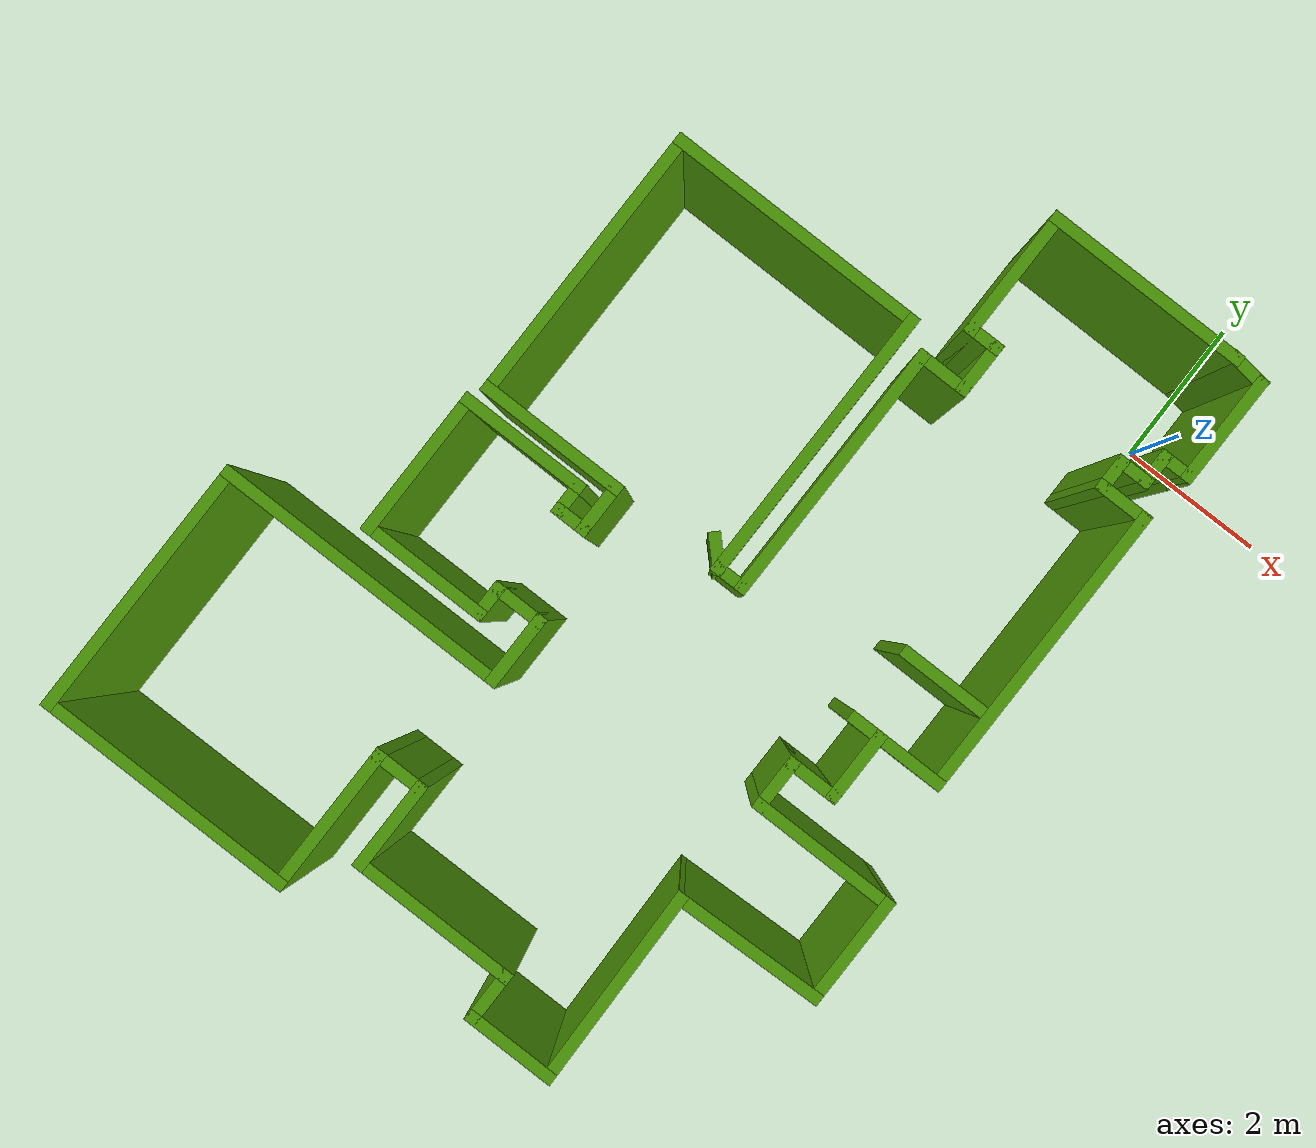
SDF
<?xml version='1.0'?>
<sdf version='1.6'>
  <model name='map_136'>
    <pose frame=''>-3.91533 -4.78462 0 0 -0 0</pose>
    <link name='Wall_0'>
      <collision name='Wall_0_Collision'>
        <geometry>
          <box>
            <size>2.75 0.15 2.5</size>
          </box>
        </geometry>
        <pose frame=''>0 0 1.25 0 -0 0</pose>
      </collision>
      <visual name='Wall_0_Visual'>
        <pose frame=''>0 0 1.25 0 -0 0</pose>
        <geometry>
          <box>
            <size>2.75 0.15 2.5</size>
          </box>
        </geometry>
        <material>
          <script>
            <uri>file://media/materials/scripts/gazebo.material</uri>
            <name>Gazebo/Grey</name>
          </script>
          <ambient>0.305882 0.603922 0.0235294 1</ambient>
        </material>
        <meta>
          <layer>0</layer>
        </meta>
      </visual>
      <pose frame=''>2.49906 5.74564 0 0 -0 3.14159</pose>
    </link>
    <link name='Wall_1'>
      <collision name='Wall_1_Collision'>
        <geometry>
          <box>
            <size>1.75 0.15 2.5</size>
          </box>
        </geometry>
        <pose frame=''>0 0 1.25 0 -0 0</pose>
      </collision>
      <visual name='Wall_1_Visual'>
        <pose frame=''>0 0 1.25 0 -0 0</pose>
        <geometry>
          <box>
            <size>1.75 0.15 2.5</size>
          </box>
        </geometry>
        <material>
          <script>
            <uri>file://media/materials/scripts/gazebo.material</uri>
            <name>Gazebo/Grey</name>
          </script>
          <ambient>0.305882 0.603922 0.0235294 1</ambient>
        </material>
        <meta>
          <layer>0</layer>
        </meta>
      </visual>
      <pose frame=''>1.19906 4.94564 0 0 -0 -1.5708</pose>
    </link>
    <link name='Wall_10'>
      <collision name='Wall_10_Collision'>
        <geometry>
          <box>
            <size>2 0.15 2.5</size>
          </box>
        </geometry>
        <pose frame=''>0 0 1.25 0 -0 0</pose>
      </collision>
      <visual name='Wall_10_Visual'>
        <pose frame=''>0 0 1.25 0 -0 0</pose>
        <geometry>
          <box>
            <size>2 0.15 2.5</size>
          </box>
        </geometry>
        <material>
          <script>
            <uri>file://media/materials/scripts/gazebo.material</uri>
            <name>Gazebo/Grey</name>
          </script>
          <ambient>0.305882 0.603922 0.0235294 1</ambient>
        </material>
        <meta>
          <layer>0</layer>
        </meta>
      </visual>
      <pose frame=''>-1.82594 0.195638 0 0 -0 0</pose>
    </link>
    <link name='Wall_11'>
      <collision name='Wall_11_Collision'>
        <geometry>
          <box>
            <size>0.75 0.15 2.5</size>
          </box>
        </geometry>
        <pose frame=''>0 0 1.25 0 -0 0</pose>
      </collision>
      <visual name='Wall_11_Visual'>
        <pose frame=''>0 0 1.25 0 -0 0</pose>
        <geometry>
          <box>
            <size>0.75 0.15 2.5</size>
          </box>
        </geometry>
        <material>
          <script>
            <uri>file://media/materials/scripts/gazebo.material</uri>
            <name>Gazebo/Grey</name>
          </script>
          <ambient>0.305882 0.603922 0.0235294 1</ambient>
        </material>
        <meta>
          <layer>0</layer>
        </meta>
      </visual>
      <pose frame=''>-0.900936 -0.104362 0 0 -0 -1.5708</pose>
    </link>
    <link name='Wall_12'>
      <collision name='Wall_12_Collision'>
        <geometry>
          <box>
            <size>0.5 0.15 2.5</size>
          </box>
        </geometry>
        <pose frame=''>0 0 1.25 0 -0 0</pose>
      </collision>
      <visual name='Wall_12_Visual'>
        <pose frame=''>0 0 1.25 0 -0 0</pose>
        <geometry>
          <box>
            <size>0.5 0.15 2.5</size>
          </box>
        </geometry>
        <material>
          <script>
            <uri>file://media/materials/scripts/gazebo.material</uri>
            <name>Gazebo/Grey</name>
          </script>
          <ambient>0.305882 0.603922 0.0235294 1</ambient>
        </material>
        <meta>
          <layer>0</layer>
        </meta>
      </visual>
      <pose frame=''>-1.07594 -0.404362 0 0 -0 3.14159</pose>
    </link>
    <link name='Wall_13'>
      <collision name='Wall_13_Collision'>
        <geometry>
          <box>
            <size>0.5 0.15 2.5</size>
          </box>
        </geometry>
        <pose frame=''>0 0 1.25 0 -0 0</pose>
      </collision>
      <visual name='Wall_13_Visual'>
        <pose frame=''>0 0 1.25 0 -0 0</pose>
        <geometry>
          <box>
            <size>0.5 0.15 2.5</size>
          </box>
        </geometry>
        <material>
          <script>
            <uri>file://media/materials/scripts/gazebo.material</uri>
            <name>Gazebo/Grey</name>
          </script>
          <ambient>0.305882 0.603922 0.0235294 1</ambient>
        </material>
        <meta>
          <layer>0</layer>
        </meta>
      </visual>
      <pose frame=''>-1.25094 -0.229362 0 0 -0 1.5708</pose>
    </link>
    <link name='Wall_14'>
      <collision name='Wall_14_Collision'>
        <geometry>
          <box>
            <size>1.75 0.15 2.5</size>
          </box>
        </geometry>
        <pose frame=''>0 0 1.25 0 -0 0</pose>
      </collision>
      <visual name='Wall_14_Visual'>
        <pose frame=''>0 0 1.25 0 -0 0</pose>
        <geometry>
          <box>
            <size>1.75 0.15 2.5</size>
          </box>
        </geometry>
        <material>
          <script>
            <uri>file://media/materials/scripts/gazebo.material</uri>
            <name>Gazebo/Grey</name>
          </script>
          <ambient>0.305882 0.603922 0.0235294 1</ambient>
        </material>
        <meta>
          <layer>0</layer>
        </meta>
      </visual>
      <pose frame=''>-2.05094 -0.054362 0 0 -0 3.14159</pose>
    </link>
    <link name='Wall_15'>
      <collision name='Wall_15_Collision'>
        <geometry>
          <box>
            <size>2 0.15 2.5</size>
          </box>
        </geometry>
        <pose frame=''>0 0 1.25 0 -0 0</pose>
      </collision>
      <visual name='Wall_15_Visual'>
        <pose frame=''>0 0 1.25 0 -0 0</pose>
        <geometry>
          <box>
            <size>2 0.15 2.5</size>
          </box>
        </geometry>
        <material>
          <script>
            <uri>file://media/materials/scripts/gazebo.material</uri>
            <name>Gazebo/Grey</name>
          </script>
          <ambient>0.305882 0.603922 0.0235294 1</ambient>
        </material>
        <meta>
          <layer>0</layer>
        </meta>
      </visual>
      <pose frame=''>-2.85094 -0.979362 0 0 -0 -1.5708</pose>
    </link>
    <link name='Wall_16'>
      <collision name='Wall_16_Collision'>
        <geometry>
          <box>
            <size>1.75 0.15 2.5</size>
          </box>
        </geometry>
        <pose frame=''>0 0 1.25 0 -0 0</pose>
      </collision>
      <visual name='Wall_16_Visual'>
        <pose frame=''>0 0 1.25 0 -0 0</pose>
        <geometry>
          <box>
            <size>1.75 0.15 2.5</size>
          </box>
        </geometry>
        <material>
          <script>
            <uri>file://media/materials/scripts/gazebo.material</uri>
            <name>Gazebo/Grey</name>
          </script>
          <ambient>0.305882 0.603922 0.0235294 1</ambient>
        </material>
        <meta>
          <layer>0</layer>
        </meta>
      </visual>
      <pose frame=''>-2.05094 -1.90436 0 0 -0 0</pose>
    </link>
    <link name='Wall_19'>
      <collision name='Wall_19_Collision'>
        <geometry>
          <box>
            <size>0.5 0.15 2.5</size>
          </box>
        </geometry>
        <pose frame=''>0 0 1.25 0 -0 0</pose>
      </collision>
      <visual name='Wall_19_Visual'>
        <pose frame=''>0 0 1.25 0 -0 0</pose>
        <geometry>
          <box>
            <size>0.5 0.15 2.5</size>
          </box>
        </geometry>
        <material>
          <script>
            <uri>file://media/materials/scripts/gazebo.material</uri>
            <name>Gazebo/Grey</name>
          </script>
          <ambient>0.305882 0.603922 0.0235294 1</ambient>
        </material>
        <meta>
          <layer>0</layer>
        </meta>
      </visual>
      <pose frame=''>-1.25094 -1.72936 0 0 -0 1.5708</pose>
    </link>
    <link name='Wall_2'>
      <collision name='Wall_2_Collision'>
        <geometry>
          <box>
            <size>0.5 0.15 2.5</size>
          </box>
        </geometry>
        <pose frame=''>0 0 1.25 0 -0 0</pose>
      </collision>
      <visual name='Wall_2_Visual'>
        <pose frame=''>0 0 1.25 0 -0 0</pose>
        <geometry>
          <box>
            <size>0.5 0.15 2.5</size>
          </box>
        </geometry>
        <material>
          <script>
            <uri>file://media/materials/scripts/gazebo.material</uri>
            <name>Gazebo/Grey</name>
          </script>
          <ambient>0.305882 0.603922 0.0235294 1</ambient>
        </material>
        <meta>
          <layer>0</layer>
        </meta>
      </visual>
      <pose frame=''>1.37406 4.14564 0 0 -0 0</pose>
    </link>
    <link name='Wall_20'>
      <collision name='Wall_20_Collision'>
        <geometry>
          <box>
            <size>0.75 0.15 2.5</size>
          </box>
        </geometry>
        <pose frame=''>0 0 1.25 0 -0 0</pose>
      </collision>
      <visual name='Wall_20_Visual'>
        <pose frame=''>0 0 1.25 0 -0 0</pose>
        <geometry>
          <box>
            <size>0.75 0.15 2.5</size>
          </box>
        </geometry>
        <material>
          <script>
            <uri>file://media/materials/scripts/gazebo.material</uri>
            <name>Gazebo/Grey</name>
          </script>
          <ambient>0.305882 0.603922 0.0235294 1</ambient>
        </material>
        <meta>
          <layer>0</layer>
        </meta>
      </visual>
      <pose frame=''>-0.950936 -1.55436 0 0 -0 0</pose>
    </link>
    <link name='Wall_21'>
      <collision name='Wall_21_Collision'>
        <geometry>
          <box>
            <size>1 0.15 2.5</size>
          </box>
        </geometry>
        <pose frame=''>0 0 1.25 0 -0 0</pose>
      </collision>
      <visual name='Wall_21_Visual'>
        <pose frame=''>0 0 1.25 0 -0 0</pose>
        <geometry>
          <box>
            <size>1 0.15 2.5</size>
          </box>
        </geometry>
        <material>
          <script>
            <uri>file://media/materials/scripts/gazebo.material</uri>
            <name>Gazebo/Grey</name>
          </script>
          <ambient>0.305882 0.603922 0.0235294 1</ambient>
        </material>
        <meta>
          <layer>0</layer>
        </meta>
      </visual>
      <pose frame=''>-0.650936 -1.97936 0 0 -0 -1.5708</pose>
    </link>
    <link name='Wall_29'>
      <collision name='Wall_29_Collision'>
        <geometry>
          <box>
            <size>0.75 0.15 2.5</size>
          </box>
        </geometry>
        <pose frame=''>0 0 1.25 0 -0 0</pose>
      </collision>
      <visual name='Wall_29_Visual'>
        <pose frame=''>0 0 1.25 0 -0 0</pose>
        <geometry>
          <box>
            <size>0.75 0.15 2.5</size>
          </box>
        </geometry>
        <material>
          <script>
            <uri>file://media/materials/scripts/gazebo.material</uri>
            <name>Gazebo/Grey</name>
          </script>
          <ambient>0.305882 0.603922 0.0235294 1</ambient>
        </material>
        <meta>
          <layer>0</layer>
        </meta>
      </visual>
      <pose frame=''>1.54906 -5.30436 0 0 -0 -1.5708</pose>
    </link>
    <link name='Wall_3'>
      <collision name='Wall_3_Collision'>
        <geometry>
          <box>
            <size>0.75 0.15 2.5</size>
          </box>
        </geometry>
        <pose frame=''>0 0 1.25 0 -0 0</pose>
      </collision>
      <visual name='Wall_3_Visual'>
        <pose frame=''>0 0 1.25 0 -0 0</pose>
        <geometry>
          <box>
            <size>0.75 0.15 2.5</size>
          </box>
        </geometry>
        <material>
          <script>
            <uri>file://media/materials/scripts/gazebo.material</uri>
            <name>Gazebo/Grey</name>
          </script>
          <ambient>0.305882 0.603922 0.0235294 1</ambient>
        </material>
        <meta>
          <layer>0</layer>
        </meta>
      </visual>
      <pose frame=''>1.54906 3.84564 0 0 -0 -1.5708</pose>
    </link>
    <link name='Wall_30'>
      <collision name='Wall_30_Collision'>
        <geometry>
          <box>
            <size>1.25 0.15 2.5</size>
          </box>
        </geometry>
        <pose frame=''>0 0 1.25 0 -0 0</pose>
      </collision>
      <visual name='Wall_30_Visual'>
        <pose frame=''>0 0 1.25 0 -0 0</pose>
        <geometry>
          <box>
            <size>1.25 0.15 2.5</size>
          </box>
        </geometry>
        <material>
          <script>
            <uri>file://media/materials/scripts/gazebo.material</uri>
            <name>Gazebo/Grey</name>
          </script>
          <ambient>0.305882 0.603922 0.0235294 1</ambient>
        </material>
        <meta>
          <layer>0</layer>
        </meta>
      </visual>
      <pose frame=''>2.09906 -5.60436 0 0 -0 0</pose>
    </link>
    <link name='Wall_31'>
      <collision name='Wall_31_Collision'>
        <geometry>
          <box>
            <size>2.68956 0.15 2.5</size>
          </box>
        </geometry>
        <pose frame=''>0 0 1.25 0 -0 0</pose>
      </collision>
      <visual name='Wall_31_Visual'>
        <pose frame=''>0 0 1.25 0 -0 0</pose>
        <geometry>
          <box>
            <size>2.68956 0.15 2.5</size>
          </box>
        </geometry>
        <material>
          <script>
            <uri>file://media/materials/scripts/gazebo.material</uri>
            <name>Gazebo/Grey</name>
          </script>
          <ambient>0.305882 0.603922 0.0235294 1</ambient>
        </material>
        <meta>
          <layer>0</layer>
        </meta>
      </visual>
      <pose frame=''>2.61847 -4.33495 0 0 -0 1.59489</pose>
    </link>
    <link name='Wall_32'>
      <collision name='Wall_32_Collision'>
        <geometry>
          <box>
            <size>2.06118 0.15 2.5</size>
          </box>
        </geometry>
        <pose frame=''>0 0 1.25 0 -0 0</pose>
      </collision>
      <visual name='Wall_32_Visual'>
        <pose frame=''>0 0 1.25 0 -0 0</pose>
        <geometry>
          <box>
            <size>2.06118 0.15 2.5</size>
          </box>
        </geometry>
        <material>
          <script>
            <uri>file://media/materials/scripts/gazebo.material</uri>
            <name>Gazebo/Grey</name>
          </script>
          <ambient>0.305882 0.603922 0.0235294 1</ambient>
        </material>
        <meta>
          <layer>0</layer>
        </meta>
      </visual>
      <pose frame=''>3.54347 -3.03495 0 0 -0 0.032001</pose>
    </link>
    <link name='Wall_33'>
      <collision name='Wall_33_Collision'>
        <geometry>
          <box>
            <size>1.5 0.15 2.5</size>
          </box>
        </geometry>
        <pose frame=''>0 0 1.25 0 -0 0</pose>
      </collision>
      <visual name='Wall_33_Visual'>
        <pose frame=''>0 0 1.25 0 -0 0</pose>
        <geometry>
          <box>
            <size>1.5 0.15 2.5</size>
          </box>
        </geometry>
        <material>
          <script>
            <uri>file://media/materials/scripts/gazebo.material</uri>
            <name>Gazebo/Grey</name>
          </script>
          <ambient>0.305882 0.603922 0.0235294 1</ambient>
        </material>
        <meta>
          <layer>0</layer>
        </meta>
      </visual>
      <pose frame=''>4.49906 -2.32936 0 0 -0 1.5708</pose>
    </link>
    <link name='Wall_34'>
      <collision name='Wall_34_Collision'>
        <geometry>
          <box>
            <size>2 0.15 2.5</size>
          </box>
        </geometry>
        <pose frame=''>0 0 1.25 0 -0 0</pose>
      </collision>
      <visual name='Wall_34_Visual'>
        <pose frame=''>0 0 1.25 0 -0 0</pose>
        <geometry>
          <box>
            <size>2 0.15 2.5</size>
          </box>
        </geometry>
        <material>
          <script>
            <uri>file://media/materials/scripts/gazebo.material</uri>
            <name>Gazebo/Grey</name>
          </script>
          <ambient>0.305882 0.603922 0.0235294 1</ambient>
        </material>
        <meta>
          <layer>0</layer>
        </meta>
      </visual>
      <pose frame=''>3.57406 -1.65436 0 0 -0 3.14159</pose>
    </link>
    <link name='Wall_35'>
      <collision name='Wall_35_Collision'>
        <geometry>
          <box>
            <size>0.75 0.15 2.5</size>
          </box>
        </geometry>
        <pose frame=''>0 0 1.25 0 -0 0</pose>
      </collision>
      <visual name='Wall_35_Visual'>
        <pose frame=''>0 0 1.25 0 -0 0</pose>
        <geometry>
          <box>
            <size>0.75 0.15 2.5</size>
          </box>
        </geometry>
        <material>
          <script>
            <uri>file://media/materials/scripts/gazebo.material</uri>
            <name>Gazebo/Grey</name>
          </script>
          <ambient>0.305882 0.603922 0.0235294 1</ambient>
        </material>
        <meta>
          <layer>0</layer>
        </meta>
      </visual>
      <pose frame=''>2.64906 -1.35436 0 0 -0 1.5708</pose>
    </link>
    <link name='Wall_36'>
      <collision name='Wall_36_Collision'>
        <geometry>
          <box>
            <size>0.75 0.15 2.5</size>
          </box>
        </geometry>
        <pose frame=''>0 0 1.25 0 -0 0</pose>
      </collision>
      <visual name='Wall_36_Visual'>
        <pose frame=''>0 0 1.25 0 -0 0</pose>
        <geometry>
          <box>
            <size>0.75 0.15 2.5</size>
          </box>
        </geometry>
        <material>
          <script>
            <uri>file://media/materials/scripts/gazebo.material</uri>
            <name>Gazebo/Grey</name>
          </script>
          <ambient>0.305882 0.603922 0.0235294 1</ambient>
        </material>
        <meta>
          <layer>0</layer>
        </meta>
      </visual>
      <pose frame=''>2.94906 -1.05436 0 0 -0 0</pose>
    </link>
    <link name='Wall_37'>
      <collision name='Wall_37_Collision'>
        <geometry>
          <box>
            <size>1 0.15 2.5</size>
          </box>
        </geometry>
        <pose frame=''>0 0 1.25 0 -0 0</pose>
      </collision>
      <visual name='Wall_37_Visual'>
        <pose frame=''>0 0 1.25 0 -0 0</pose>
        <geometry>
          <box>
            <size>1 0.15 2.5</size>
          </box>
        </geometry>
        <material>
          <script>
            <uri>file://media/materials/scripts/gazebo.material</uri>
            <name>Gazebo/Grey</name>
          </script>
          <ambient>0.305882 0.603922 0.0235294 1</ambient>
        </material>
        <meta>
          <layer>0</layer>
        </meta>
      </visual>
      <pose frame=''>3.24906 -0.629362 0 0 -0 1.5708</pose>
    </link>
    <link name='Wall_38'>
      <collision name='Wall_38_Collision'>
        <geometry>
          <box>
            <size>1 0.15 2.5</size>
          </box>
        </geometry>
        <pose frame=''>0 0 1.25 0 -0 0</pose>
      </collision>
      <visual name='Wall_38_Visual'>
        <pose frame=''>0 0 1.25 0 -0 0</pose>
        <geometry>
          <box>
            <size>1 0.15 2.5</size>
          </box>
        </geometry>
        <material>
          <script>
            <uri>file://media/materials/scripts/gazebo.material</uri>
            <name>Gazebo/Grey</name>
          </script>
          <ambient>0.305882 0.603922 0.0235294 1</ambient>
        </material>
        <meta>
          <layer>0</layer>
        </meta>
      </visual>
      <pose frame=''>3.67406 -0.204362 0 0 -0 0</pose>
    </link>
    <link name='Wall_39'>
      <collision name='Wall_39_Collision'>
        <geometry>
          <box>
            <size>4 0.15 2.5</size>
          </box>
        </geometry>
        <pose frame=''>0 0 1.25 0 -0 0</pose>
      </collision>
      <visual name='Wall_39_Visual'>
        <pose frame=''>0 0 1.25 0 -0 0</pose>
        <geometry>
          <box>
            <size>4 0.15 2.5</size>
          </box>
        </geometry>
        <material>
          <script>
            <uri>file://media/materials/scripts/gazebo.material</uri>
            <name>Gazebo/Grey</name>
          </script>
          <ambient>0.305882 0.603922 0.0235294 1</ambient>
        </material>
        <meta>
          <layer>0</layer>
        </meta>
      </visual>
      <pose frame=''>4.09906 1.72064 0 0 -0 1.5708</pose>
    </link>
    <link name='Wall_4'>
      <collision name='Wall_4_Collision'>
        <geometry>
          <box>
            <size>0.75 0.15 2.5</size>
          </box>
        </geometry>
        <pose frame=''>0 0 1.25 0 -0 0</pose>
      </collision>
      <visual name='Wall_4_Visual'>
        <pose frame=''>0 0 1.25 0 -0 0</pose>
        <geometry>
          <box>
            <size>0.75 0.15 2.5</size>
          </box>
        </geometry>
        <material>
          <script>
            <uri>file://media/materials/scripts/gazebo.material</uri>
            <name>Gazebo/Grey</name>
          </script>
          <ambient>0.305882 0.603922 0.0235294 1</ambient>
        </material>
        <meta>
          <layer>0</layer>
        </meta>
      </visual>
      <pose frame=''>1.24906 3.54564 0 0 -0 3.14159</pose>
    </link>
    <link name='Wall_40'>
      <collision name='Wall_40_Collision'>
        <geometry>
          <box>
            <size>0.75 0.15 2.5</size>
          </box>
        </geometry>
        <pose frame=''>0 0 1.25 0 -0 0</pose>
      </collision>
      <visual name='Wall_40_Visual'>
        <pose frame=''>0 0 1.25 0 -0 0</pose>
        <geometry>
          <box>
            <size>0.75 0.15 2.5</size>
          </box>
        </geometry>
        <material>
          <script>
            <uri>file://media/materials/scripts/gazebo.material</uri>
            <name>Gazebo/Grey</name>
          </script>
          <ambient>0.305882 0.603922 0.0235294 1</ambient>
        </material>
        <meta>
          <layer>0</layer>
        </meta>
      </visual>
      <pose frame=''>3.79906 3.64564 0 0 -0 3.14159</pose>
    </link>
    <link name='Wall_41'>
      <collision name='Wall_41_Collision'>
        <geometry>
          <box>
            <size>0.5 0.15 2.5</size>
          </box>
        </geometry>
        <pose frame=''>0 0 1.25 0 -0 0</pose>
      </collision>
      <visual name='Wall_41_Visual'>
        <pose frame=''>0 0 1.25 0 -0 0</pose>
        <geometry>
          <box>
            <size>0.5 0.15 2.5</size>
          </box>
        </geometry>
        <material>
          <script>
            <uri>file://media/materials/scripts/gazebo.material</uri>
            <name>Gazebo/Grey</name>
          </script>
          <ambient>0.305882 0.603922 0.0235294 1</ambient>
        </material>
        <meta>
          <layer>0</layer>
        </meta>
      </visual>
      <pose frame=''>3.49906 3.82064 0 0 -0 1.5708</pose>
    </link>
    <link name='Wall_42'>
      <collision name='Wall_42_Collision'>
        <geometry>
          <box>
            <size>0.5 0.15 2.5</size>
          </box>
        </geometry>
        <pose frame=''>0 0 1.25 0 -0 0</pose>
      </collision>
      <visual name='Wall_42_Visual'>
        <pose frame=''>0 0 1.25 0 -0 0</pose>
        <geometry>
          <box>
            <size>0.5 0.15 2.5</size>
          </box>
        </geometry>
        <material>
          <script>
            <uri>file://media/materials/scripts/gazebo.material</uri>
            <name>Gazebo/Grey</name>
          </script>
          <ambient>0.305882 0.603922 0.0235294 1</ambient>
        </material>
        <meta>
          <layer>0</layer>
        </meta>
      </visual>
      <pose frame=''>3.67406 3.99564 0 0 -0 0</pose>
    </link>
    <link name='Wall_43'>
      <collision name='Wall_43_Collision'>
        <geometry>
          <box>
            <size>0.5 0.15 2.5</size>
          </box>
        </geometry>
        <pose frame=''>0 0 1.25 0 -0 0</pose>
      </collision>
      <visual name='Wall_43_Visual'>
        <pose frame=''>0 0 1.25 0 -0 0</pose>
        <geometry>
          <box>
            <size>0.5 0.15 2.5</size>
          </box>
        </geometry>
        <material>
          <script>
            <uri>file://media/materials/scripts/gazebo.material</uri>
            <name>Gazebo/Grey</name>
          </script>
          <ambient>0.305882 0.603922 0.0235294 1</ambient>
        </material>
        <meta>
          <layer>0</layer>
        </meta>
      </visual>
      <pose frame=''>3.84906 4.17064 0 0 -0 1.5708</pose>
    </link>
    <link name='Wall_44'>
      <collision name='Wall_44_Collision'>
        <geometry>
          <box>
            <size>0.5 0.15 2.5</size>
          </box>
        </geometry>
        <pose frame=''>0 0 1.25 0 -0 0</pose>
      </collision>
      <visual name='Wall_44_Visual'>
        <pose frame=''>0 0 1.25 0 -0 0</pose>
        <geometry>
          <box>
            <size>0.5 0.15 2.5</size>
          </box>
        </geometry>
        <material>
          <script>
            <uri>file://media/materials/scripts/gazebo.material</uri>
            <name>Gazebo/Grey</name>
          </script>
          <ambient>0.305882 0.603922 0.0235294 1</ambient>
        </material>
        <meta>
          <layer>0</layer>
        </meta>
      </visual>
      <pose frame=''>4.02406 4.34564 0 0 -0 0</pose>
    </link>
    <link name='Wall_45'>
      <collision name='Wall_45_Collision'>
        <geometry>
          <box>
            <size>1.5 0.15 2.5</size>
          </box>
        </geometry>
        <pose frame=''>0 0 1.25 0 -0 0</pose>
      </collision>
      <visual name='Wall_45_Visual'>
        <pose frame=''>0 0 1.25 0 -0 0</pose>
        <geometry>
          <box>
            <size>1.5 0.15 2.5</size>
          </box>
        </geometry>
        <material>
          <script>
            <uri>file://media/materials/scripts/gazebo.material</uri>
            <name>Gazebo/Grey</name>
          </script>
          <ambient>0.305882 0.603922 0.0235294 1</ambient>
        </material>
        <meta>
          <layer>0</layer>
        </meta>
      </visual>
      <pose frame=''>4.19906 5.02064 0 0 -0 1.5708</pose>
    </link>
    <link name='Wall_46'>
      <collision name='Wall_46_Collision'>
        <geometry>
          <box>
            <size>0.553113 0.15 2.5</size>
          </box>
        </geometry>
        <pose frame=''>0 0 1.25 0 -0 0</pose>
      </collision>
      <visual name='Wall_46_Visual'>
        <pose frame=''>0 0 1.25 0 -0 0</pose>
        <geometry>
          <box>
            <size>0.553113 0.15 2.5</size>
          </box>
        </geometry>
        <material>
          <script>
            <uri>file://media/materials/scripts/gazebo.material</uri>
            <name>Gazebo/Grey</name>
          </script>
          <ambient>0.305882 0.603922 0.0235294 1</ambient>
        </material>
        <meta>
          <layer>0</layer>
        </meta>
      </visual>
      <pose frame=''>3.99906 5.72064 0 0 -0 3.01724</pose>
    </link>
    <link name='Wall_49'>
      <collision name='Wall_49_Collision'>
        <geometry>
          <box>
            <size>4 0.15 2.5</size>
          </box>
        </geometry>
        <pose frame=''>0 0 1.25 0 -0 0</pose>
      </collision>
      <visual name='Wall_49_Visual'>
        <pose frame=''>0 0 1.25 0 -0 0</pose>
        <geometry>
          <box>
            <size>4 0.15 2.5</size>
          </box>
        </geometry>
        <material>
          <script>
            <uri>file://media/materials/scripts/gazebo.material</uri>
            <name>Gazebo/Grey</name>
          </script>
          <ambient>0.305882 0.603922 0.0235294 1</ambient>
        </material>
        <meta>
          <layer>0</layer>
        </meta>
      </visual>
      <pose frame=''>-2.57594 -2.40436 0 0 -0 3.14159</pose>
    </link>
    <link name='Wall_5'>
      <collision name='Wall_5_Collision'>
        <geometry>
          <box>
            <size>3.5 0.15 2.5</size>
          </box>
        </geometry>
        <pose frame=''>0 0 1.25 0 -0 0</pose>
      </collision>
      <visual name='Wall_5_Visual'>
        <pose frame=''>0 0 1.25 0 -0 0</pose>
        <geometry>
          <box>
            <size>3.5 0.15 2.5</size>
          </box>
        </geometry>
        <material>
          <script>
            <uri>file://media/materials/scripts/gazebo.material</uri>
            <name>Gazebo/Grey</name>
          </script>
          <ambient>0.305882 0.603922 0.0235294 1</ambient>
        </material>
        <meta>
          <layer>0</layer>
        </meta>
      </visual>
      <pose frame=''>0.949064 1.87064 0 0 -0 -1.5708</pose>
    </link>
    <link name='Wall_50'>
      <collision name='Wall_50_Collision'>
        <geometry>
          <box>
            <size>3.5 0.15 2.5</size>
          </box>
        </geometry>
        <pose frame=''>0 0 1.25 0 -0 0</pose>
      </collision>
      <visual name='Wall_50_Visual'>
        <pose frame=''>0 0 1.25 0 -0 0</pose>
        <geometry>
          <box>
            <size>3.5 0.15 2.5</size>
          </box>
        </geometry>
        <material>
          <script>
            <uri>file://media/materials/scripts/gazebo.material</uri>
            <name>Gazebo/Grey</name>
          </script>
          <ambient>0.305882 0.603922 0.0235294 1</ambient>
        </material>
        <meta>
          <layer>0</layer>
        </meta>
      </visual>
      <pose frame=''>-4.50094 -4.07936 0 0 -0 -1.5708</pose>
    </link>
    <link name='Wall_51'>
      <collision name='Wall_51_Collision'>
        <geometry>
          <box>
            <size>3.5 0.15 2.5</size>
          </box>
        </geometry>
        <pose frame=''>0 0 1.25 0 -0 0</pose>
      </collision>
      <visual name='Wall_51_Visual'>
        <pose frame=''>0 0 1.25 0 -0 0</pose>
        <geometry>
          <box>
            <size>3.5 0.15 2.5</size>
          </box>
        </geometry>
        <material>
          <script>
            <uri>file://media/materials/scripts/gazebo.material</uri>
            <name>Gazebo/Grey</name>
          </script>
          <ambient>0.305882 0.603922 0.0235294 1</ambient>
        </material>
        <meta>
          <layer>0</layer>
        </meta>
      </visual>
      <pose frame=''>-2.82594 -5.75436 0 0 -0 0</pose>
    </link>
    <link name='Wall_52'>
      <collision name='Wall_52_Collision'>
        <geometry>
          <box>
            <size>2 0.15 2.5</size>
          </box>
        </geometry>
        <pose frame=''>0 0 1.25 0 -0 0</pose>
      </collision>
      <visual name='Wall_52_Visual'>
        <pose frame=''>0 0 1.25 0 -0 0</pose>
        <geometry>
          <box>
            <size>2 0.15 2.5</size>
          </box>
        </geometry>
        <material>
          <script>
            <uri>file://media/materials/scripts/gazebo.material</uri>
            <name>Gazebo/Grey</name>
          </script>
          <ambient>0.305882 0.603922 0.0235294 1</ambient>
        </material>
        <meta>
          <layer>0</layer>
        </meta>
      </visual>
      <pose frame=''>-1.15094 -4.82936 0 0 -0 1.5708</pose>
    </link>
    <link name='Wall_53'>
      <collision name='Wall_53_Collision'>
        <geometry>
          <box>
            <size>0.75 0.15 2.5</size>
          </box>
        </geometry>
        <pose frame=''>0 0 1.25 0 -0 0</pose>
      </collision>
      <visual name='Wall_53_Visual'>
        <pose frame=''>0 0 1.25 0 -0 0</pose>
        <geometry>
          <box>
            <size>0.75 0.15 2.5</size>
          </box>
        </geometry>
        <material>
          <script>
            <uri>file://media/materials/scripts/gazebo.material</uri>
            <name>Gazebo/Grey</name>
          </script>
          <ambient>0.305882 0.603922 0.0235294 1</ambient>
        </material>
        <meta>
          <layer>0</layer>
        </meta>
      </visual>
      <pose frame=''>-0.850936 -3.90436 0 0 -0 0</pose>
    </link>
    <link name='Wall_54'>
      <collision name='Wall_54_Collision'>
        <geometry>
          <box>
            <size>1.25 0.15 2.5</size>
          </box>
        </geometry>
        <pose frame=''>0 0 1.25 0 -0 0</pose>
      </collision>
      <visual name='Wall_54_Visual'>
        <pose frame=''>0 0 1.25 0 -0 0</pose>
        <geometry>
          <box>
            <size>1.25 0.15 2.5</size>
          </box>
        </geometry>
        <material>
          <script>
            <uri>file://media/materials/scripts/gazebo.material</uri>
            <name>Gazebo/Grey</name>
          </script>
          <ambient>0.305882 0.603922 0.0235294 1</ambient>
        </material>
        <meta>
          <layer>0</layer>
        </meta>
      </visual>
      <pose frame=''>-0.550936 -4.45436 0 0 -0 -1.5708</pose>
    </link>
    <link name='Wall_57'>
      <collision name='Wall_57_Collision'>
        <geometry>
          <box>
            <size>2.25 0.15 2.5</size>
          </box>
        </geometry>
        <pose frame=''>0 0 1.25 0 -0 0</pose>
      </collision>
      <visual name='Wall_57_Visual'>
        <pose frame=''>0 0 1.25 0 -0 0</pose>
        <geometry>
          <box>
            <size>2.25 0.15 2.5</size>
          </box>
        </geometry>
        <material>
          <script>
            <uri>file://media/materials/scripts/gazebo.material</uri>
            <name>Gazebo/Grey</name>
          </script>
          <ambient>0.305882 0.603922 0.0235294 1</ambient>
        </material>
        <meta>
          <layer>0</layer>
        </meta>
      </visual>
      <pose frame=''>0.499064 -5.00436 0 0 -0 0</pose>
    </link>
    <link name='Wall_6'>
      <collision name='Wall_6_Collision'>
        <geometry>
          <box>
            <size>0.5 0.15 2.5</size>
          </box>
        </geometry>
        <pose frame=''>0 0 1.25 0 -0 0</pose>
      </collision>
      <visual name='Wall_6_Visual'>
        <pose frame=''>0 0 1.25 0 -0 0</pose>
        <geometry>
          <box>
            <size>0.5 0.15 2.5</size>
          </box>
        </geometry>
        <material>
          <script>
            <uri>file://media/materials/scripts/gazebo.material</uri>
            <name>Gazebo/Grey</name>
          </script>
          <ambient>0.305882 0.603922 0.0235294 1</ambient>
        </material>
        <meta>
          <layer>0</layer>
        </meta>
      </visual>
      <pose frame=''>0.774064 0.195638 0 0 -0 3.14159</pose>
    </link>
    <link name='Wall_62'>
      <collision name='Wall_62_Collision'>
        <geometry>
          <box>
            <size>1.25 0.15 2.5</size>
          </box>
        </geometry>
        <pose frame=''>0 0 1.25 0 -0 0</pose>
      </collision>
      <visual name='Wall_62_Visual'>
        <pose frame=''>0 0 1.25 0 -0 0</pose>
        <geometry>
          <box>
            <size>1.25 0.15 2.5</size>
          </box>
        </geometry>
        <material>
          <script>
            <uri>file://media/materials/scripts/gazebo.material</uri>
            <name>Gazebo/Grey</name>
          </script>
          <ambient>0.305882 0.603922 0.0235294 1</ambient>
        </material>
        <meta>
          <layer>0</layer>
        </meta>
      </visual>
      <pose frame=''>3.46195 0.759431 0 0 -0 0</pose>
    </link>
    <link name='Wall_66'>
      <collision name='Wall_66_Collision'>
        <geometry>
          <box>
            <size>0.5 0.15 2.5</size>
          </box>
        </geometry>
        <pose frame=''>0 0 1.25 0 -0 0</pose>
      </collision>
      <visual name='Wall_66_Visual'>
        <pose frame=''>0 0 1.25 0 -0 0</pose>
        <geometry>
          <box>
            <size>0.5 0.15 2.5</size>
          </box>
        </geometry>
        <material>
          <script>
            <uri>file://media/materials/scripts/gazebo.material</uri>
            <name>Gazebo/Grey</name>
          </script>
          <ambient>0.305882 0.603922 0.0235294 1</ambient>
        </material>
        <meta>
          <layer>0</layer>
        </meta>
      </visual>
      <pose frame=''>0.475321 0.319382 0 0 -0 2.35619</pose>
    </link>
    <link name='Wall_68'>
      <collision name='Wall_68_Collision'>
        <geometry>
          <box>
            <size>0.5 0.15 2.5</size>
          </box>
        </geometry>
        <pose frame=''>0 0 1.25 0 -0 0</pose>
      </collision>
      <visual name='Wall_68_Visual'>
        <pose frame=''>0 0 1.25 0 -0 0</pose>
        <geometry>
          <box>
            <size>0.5 0.15 2.5</size>
          </box>
        </geometry>
        <material>
          <script>
            <uri>file://media/materials/scripts/gazebo.material</uri>
            <name>Gazebo/Grey</name>
          </script>
          <ambient>0.305882 0.603922 0.0235294 1</ambient>
        </material>
        <meta>
          <layer>0</layer>
        </meta>
      </visual>
      <pose frame=''>3.07406 -0.204362 0 0 -0 3.14159</pose>
    </link>
    <link name='Wall_7'>
      <collision name='Wall_7_Collision'>
        <geometry>
          <box>
            <size>3.75 0.15 2.5</size>
          </box>
        </geometry>
        <pose frame=''>0 0 1.25 0 -0 0</pose>
      </collision>
      <visual name='Wall_7_Visual'>
        <pose frame=''>0 0 1.25 0 -0 0</pose>
        <geometry>
          <box>
            <size>3.75 0.15 2.5</size>
          </box>
        </geometry>
        <material>
          <script>
            <uri>file://media/materials/scripts/gazebo.material</uri>
            <name>Gazebo/Grey</name>
          </script>
          <ambient>0.305882 0.603922 0.0235294 1</ambient>
        </material>
        <meta>
          <layer>0</layer>
        </meta>
      </visual>
      <pose frame=''>0.599064 1.99564 0 0 -0 1.5708</pose>
    </link>
    <link name='Wall_8'>
      <collision name='Wall_8_Collision'>
        <geometry>
          <box>
            <size>3.5 0.15 2.5</size>
          </box>
        </geometry>
        <pose frame=''>0 0 1.25 0 -0 0</pose>
      </collision>
      <visual name='Wall_8_Visual'>
        <pose frame=''>0 0 1.25 0 -0 0</pose>
        <geometry>
          <box>
            <size>3.5 0.15 2.5</size>
          </box>
        </geometry>
        <material>
          <script>
            <uri>file://media/materials/scripts/gazebo.material</uri>
            <name>Gazebo/Grey</name>
          </script>
          <ambient>0.305882 0.603922 0.0235294 1</ambient>
        </material>
        <meta>
          <layer>0</layer>
        </meta>
      </visual>
      <pose frame=''>-1.07594 3.79564 0 0 -0 3.14159</pose>
    </link>
    <link name='Wall_9'>
      <collision name='Wall_9_Collision'>
        <geometry>
          <box>
            <size>3.75 0.15 2.5</size>
          </box>
        </geometry>
        <pose frame=''>0 0 1.25 0 -0 0</pose>
      </collision>
      <visual name='Wall_9_Visual'>
        <pose frame=''>0 0 1.25 0 -0 0</pose>
        <geometry>
          <box>
            <size>3.75 0.15 2.5</size>
          </box>
        </geometry>
        <material>
          <script>
            <uri>file://media/materials/scripts/gazebo.material</uri>
            <name>Gazebo/Grey</name>
          </script>
          <ambient>0.305882 0.603922 0.0235294 1</ambient>
        </material>
        <meta>
          <layer>0</layer>
        </meta>
      </visual>
      <pose frame=''>-2.75094 1.99564 0 0 -0 -1.5708</pose>
    </link>
    <static>1</static>
  </model>
</sdf>
